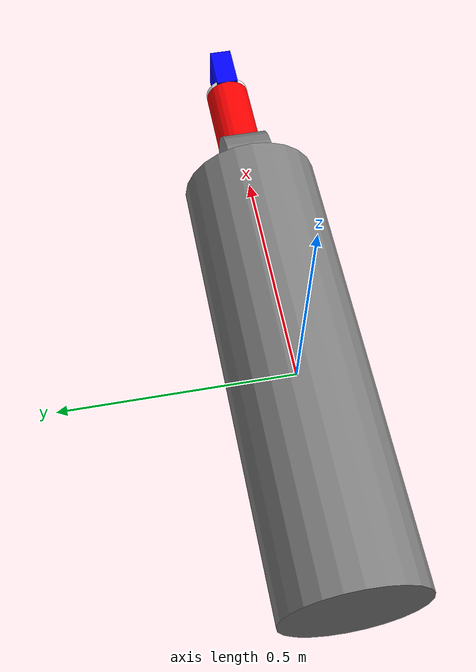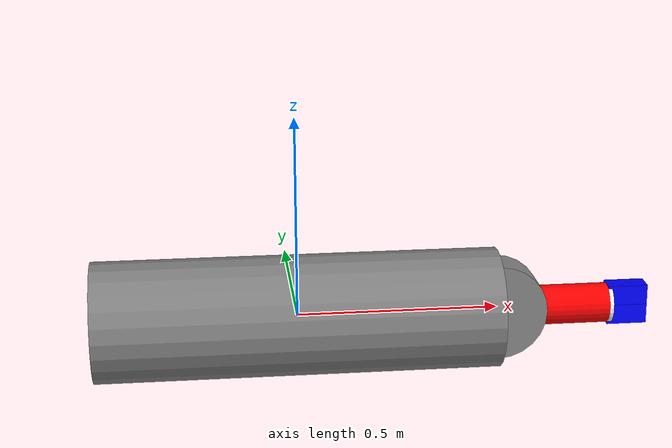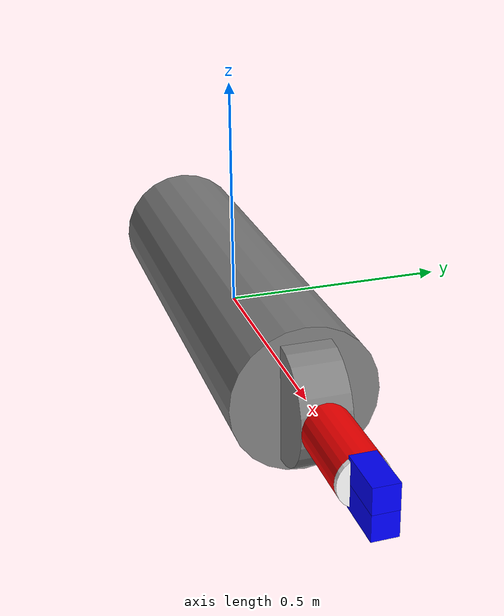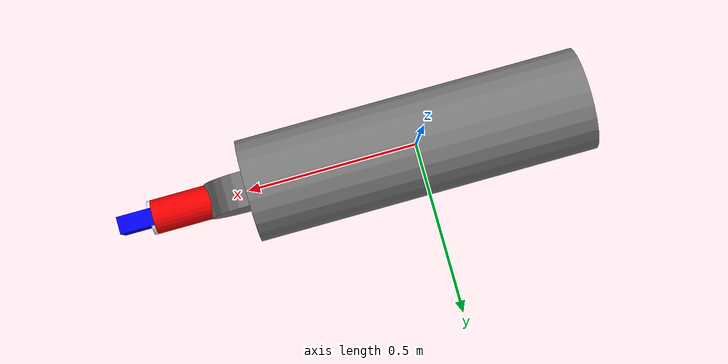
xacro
<?xml version="1.0"?>
<robot xmlns:xacro="http://www.ros.org/wiki/xacro" name="twig">
    <xacro:arg name="initial_positions_file" default="initial_positions.yaml" />

    <!-- Import twig urdf file -->
    <xacro:include filename="$(find twig_description)/urdf/twig.urdf.xacro" />

    <!-- Import control_xacro -->
    <xacro:include filename="twig.ros2_control.xacro" />

    <xacro:twig_ros2_control name="FakeSystem" initial_positions_file="$(arg initial_positions_file)"/>

</robot>

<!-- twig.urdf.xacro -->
<robot xmlns:xacro="http://www.ros.org/wiki/xacro" name="twig">

  <xacro:property name="name" value="twig" />

  <xacro:property name="base_length" value="0.08" />
  <xacro:property name="base_radius" value="0.12" />
  <xacro:property name="base_width" value="0.1" />

  <xacro:property name="shoulder_length" value="0.2" />
  <xacro:property name="shoulder_radius" value="0.05" />

  <xacro:property name="wrist_length" value="0.01" />
  <xacro:property name="wrist_radius" value="0.05" />

  <xacro:property name="gripper_length" value="0.05" />
  <xacro:property name="gripper_width" value="0.05" />
  <xacro:property name="gripper_height" value="0.1" />

  <xacro:property name="shoulder_limit" value="${(pi/180)*100}" />
  <xacro:property name="wrist_limit" value="${(pi/180)*360}" />
  <xacro:property name="gripper_limit" value="${(pi/180)*20}" />

  <xacro:property name="shoulder_velocity_limit" value="5.0" />
  <xacro:property name="wrist_velocity_limit" value="5.0" />
  <xacro:property name="gripper_velocity_limit" value="1.0" />

  <xacro:property name="shoulder_effort_limit" value="5.0" />
  <xacro:property name="wrist_effort_limit" value="5.0" />
  <xacro:property name="gripper_effort_limit" value="0.1" />

  <material name="blue">
    <color rgba="0 0 1 1" />
  </material>

  <material name="red">
    <color rgba="1 0 0 1" />
  </material>

  <material name="black">
    <color rgba="0 0 0 1" />
  </material>

  <material name="white">
    <color rgba="1 1 1 1" />
  </material>

  <material name="grey">
    <color rgba="0.5 0.5 0.5 1" />
  </material>

  <link name="base_link">
    <visual>
      <geometry>
        <cylinder length="1" radius="0.15" />
      </geometry>
      <material name="grey" />
      <origin rpy="0 ${pi/2} 0" />
    </visual>
    <collision>
      <geometry>
        <cylinder length="1" radius="0.15" />
      </geometry>
      <origin rpy="0 ${pi/2} 0" />
    </collision>
  </link>

  <link name="${name}_base">
    <visual>
      <geometry>
        <cylinder length="${base_width}" radius="${base_radius}" />
      </geometry>
      <material name="grey" />
      <origin rpy="0 ${pi/2} ${pi/2}" />
    </visual>
    <collision>
      <geometry>
        <cylinder length="${base_width}" radius="${base_radius}" />
      </geometry>
      <origin rpy="0 ${pi/2} ${pi/2}" />
    </collision>
  </link>

  <link name="${name}_shoulder">
    <visual>
      <geometry>
        <cylinder length="${shoulder_length}" radius="${shoulder_radius}" />
      </geometry>
      <origin xyz="0 0 ${shoulder_length/2}" />
      <material name="red" />
    </visual>
    <collision>
      <geometry>
        <cylinder length="${shoulder_length}" radius="${shoulder_radius}" />
      </geometry>
      <origin xyz="0 0 ${shoulder_length/2}" />
    </collision>
  </link>

  <link name="${name}_wrist">
    <visual>
      <geometry>
        <cylinder length="${wrist_length}" radius="${wrist_radius}" />
      </geometry>
      <origin xyz="0 0 ${wrist_length/2}" />
      <material name="white" />
    </visual>
    <collision>
      <geometry>
        <cylinder length="${wrist_length}" radius="${wrist_radius}" />
      </geometry>
      <origin xyz="0 0 ${wrist_length/2}" />
    </collision>
  </link>

  <link name="${name}_gripper">
  </link>

  <link name="${name}_left_gripper">
    <visual>
      <geometry>
        <box size="${gripper_length} ${gripper_width} ${gripper_height}" />
      </geometry>
      <origin xyz="${-gripper_length/2} 0 ${gripper_height/2}" />
      <material name="blue" />
    </visual>
    <collision>
      <geometry>
        <box size="${gripper_length} ${gripper_width} ${gripper_height}" />
      </geometry>
      <origin xyz="${-gripper_length/2} 0 ${gripper_height/2}" />
    </collision>
  </link>

  <link name="${name}_right_gripper">
    <visual>
      <geometry>
        <box size="${gripper_length} ${gripper_width} ${gripper_height}" />
      </geometry>
      <origin xyz="${gripper_length/2} 0 ${gripper_height/2}" />
      <material name="blue" />
    </visual>
    <collision>
      <geometry>
        <box size="${gripper_length} ${gripper_width} ${gripper_height}" />
      </geometry>
      <origin xyz="${gripper_length/2} 0 ${gripper_height/2}" />
    </collision>
  </link>

  <joint name="${name}_base_joint" type="fixed">
    <parent link="base_link" />
    <child link="${name}_base" />
    <origin xyz="0.5 0 0" rpy="0 ${pi/2} 0" />
  </joint>

  <joint name="${name}_shoulder_joint" type="revolute">
    <parent link="${name}_base" />
    <child link="${name}_shoulder" />
    <axis rpy="0 0 0" xyz="0 -1 0" />
    <origin xyz="0 0 ${base_length}" />
    <limit effort="${shoulder_effort_limit}" lower="${-shoulder_limit}" upper="${shoulder_limit}" velocity="${shoulder_velocity_limit}"/>
  </joint>

  <joint name="${name}_wrist_joint" type="revolute">
    <parent link="${name}_shoulder" />
    <child link="${name}_wrist" />
    <axis rpy="0 0 0" xyz="0 0 -1" />
    <origin xyz="0 0 ${shoulder_length}" />
    <limit effort="${wrist_effort_limit}" lower="${-wrist_limit}" upper="${wrist_limit}" velocity="${wrist_velocity_limit}"/>
  </joint>

  <joint name="${name}_gripper_joint" type="fixed">
    <parent link="${name}_wrist" />
    <child link="${name}_gripper" />
    <origin xyz="0 0 ${gripper_height}" />
  </joint>

  <joint name="${name}_left_finger_joint" type="revolute">
    <parent link="${name}_wrist" />
    <child link="${name}_left_gripper" />
    <axis rpy="0 0 0" xyz="0 -1 0" />
    <limit effort="${gripper_effort_limit}" lower="0" upper="${gripper_limit}" velocity="${gripper_velocity_limit}"/>
  </joint>

  <joint name="${name}_right_finger_joint" type="revolute">
    <parent link="${name}_wrist" />
    <child link="${name}_right_gripper" />
    <axis rpy="0 0 0" xyz="0 1 0" />
    <limit effort="${gripper_effort_limit}" lower="0" upper="${gripper_limit}" velocity="${gripper_velocity_limit}"/>
    <mimic joint="twig_left_finger_joint" />
  </joint>
</robot>
